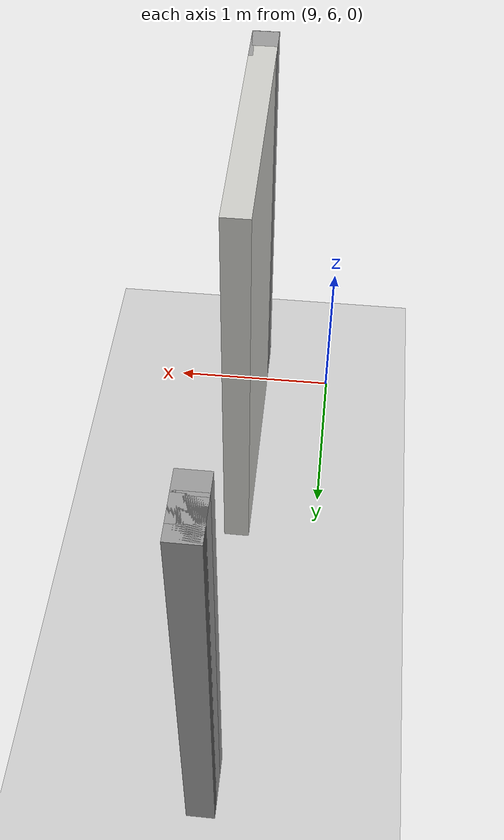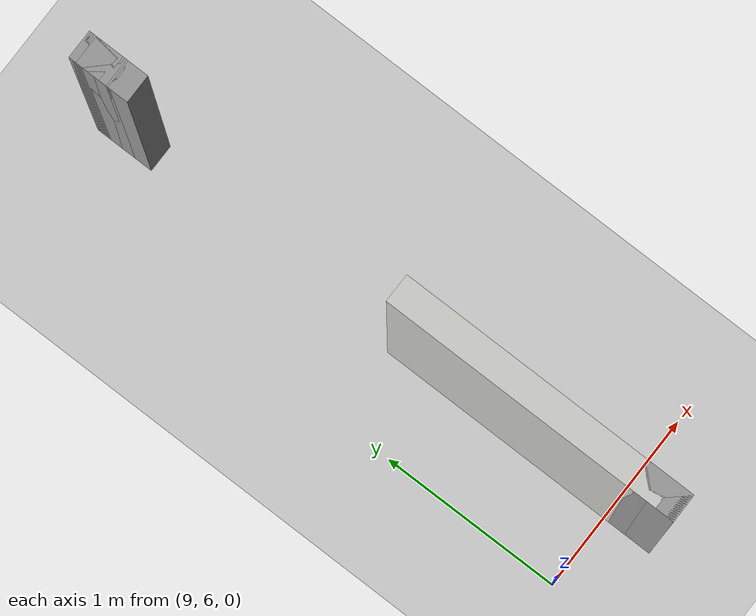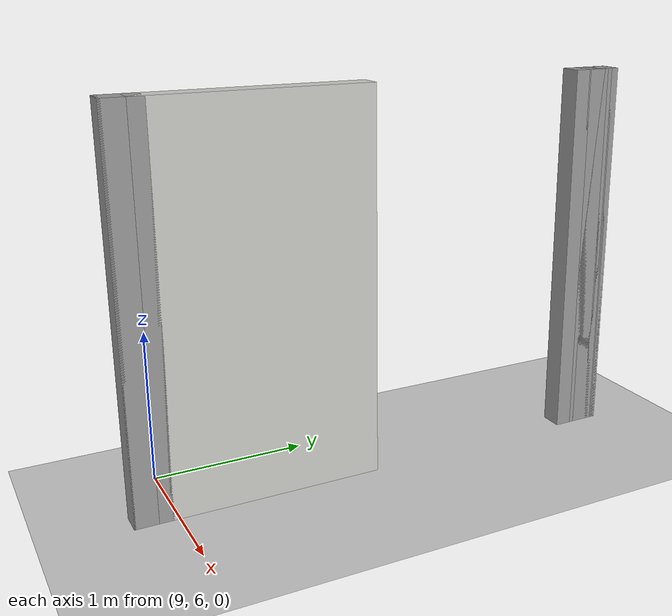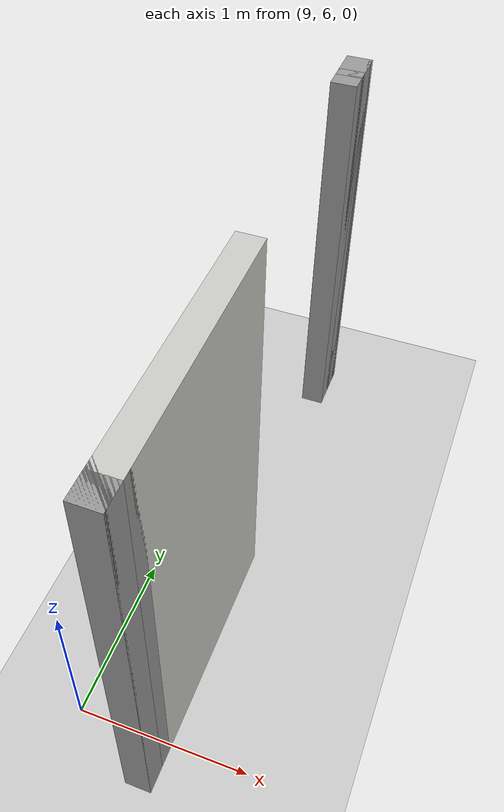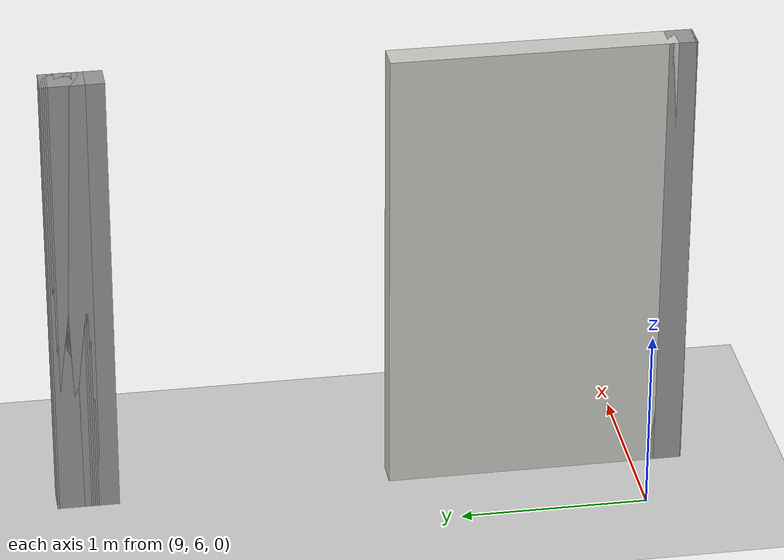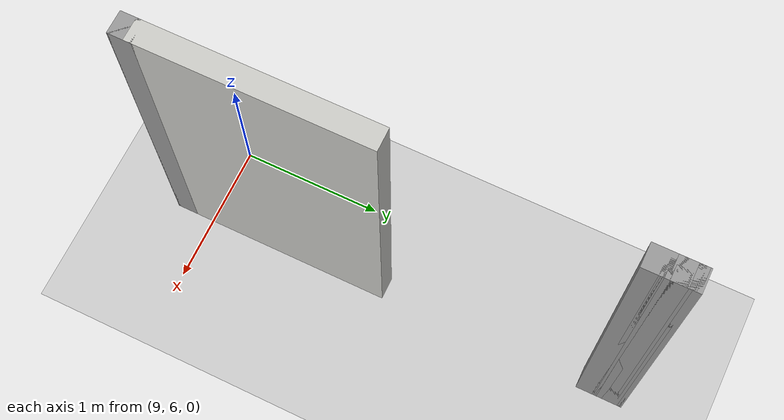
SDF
<sdf version="1.6">
 <world name="default">
  <model name="ground_plane">
   <static>1</static>
   <link name="link">
    <collision name="collision">
     <geometry><plane><normal>0 0 1</normal><size>100 100</size></plane></geometry>
     <surface>
      <contact><collide_bitmask>65535</collide_bitmask></contact>
      <friction><ode><mu>100</mu><mu2>50</mu2></ode></friction>
     </surface>
    </collision>
    <visual name="visual">
     <cast_shadows>0</cast_shadows>
     <geometry><plane><normal>0 0 1</normal><size>100 100</size></plane></geometry>
     <material>
      <script><uri>file://media/materials/scripts/gazebo.material</uri><name>Gazebo/Grey</name></script>
     </material>
    </visual>
   </link>
  </model>
  <model name="ecst_lab_v2">
   <pose>2.38151 7.60499 -4e-06 -3e-06 3e-06 -1.57079</pose>
   <link name="Wall_12">
    <collision name="Wall_12_Collision">
     <geometry><box><size>0.16 0.15 2.5</size></box></geometry>
     <pose>0 0 1.25 0 -0 0</pose>
    </collision>
    <visual name="Wall_12_Visual">
     <pose>0 0 1.25 0 -0 0</pose>
     <geometry><box><size>0.16 0.15 2.5</size></box></geometry>
     <material>
      <script><uri>file://media/materials/scripts/gazebo.material</uri><name>Gazebo/Grey</name></script>
      <ambient>1 1 1 1</ambient>
     </material>
     <meta><layer>0</layer></meta>
    </visual>
    <pose>-1.41801 7.10227 0 0 -0 0</pose>
    <inertial>
     <inertia><ixx>1</ixx><ixy>0</ixy><ixz>0</ixz><iyy>1</iyy><iyz>0</iyz><izz>1</izz></inertia>
     <mass>1</mass>
    </inertial>
   </link>
   <link name="Wall_13">
    <collision name="Wall_13_Collision">
     <geometry><box><size>0.16 0.15 2.5</size></box></geometry>
     <pose>0 0 1.25 0 -0 0</pose>
    </collision>
    <visual name="Wall_13_Visual">
     <pose>0 0 1.25 0 -0 0</pose>
     <geometry><box><size>0.16 0.15 2.5</size></box></geometry>
     <material>
      <script><uri>file://media/materials/scripts/gazebo.material</uri><name>Gazebo/Grey</name></script>
      <ambient>1 1 1 1</ambient>
     </material>
     <meta><layer>0</layer></meta>
    </visual>
    <pose>-1.40801 7.10227 0 0 -0 0</pose>
    <inertial>
     <inertia><ixx>1</ixx><ixy>0</ixy><ixz>0</ixz><iyy>1</iyy><iyz>0</iyz><izz>1</izz></inertia>
     <mass>1</mass>
    </inertial>
   </link>
   <link name="Wall_14">
    <collision name="Wall_14_Collision">
     <geometry><box><size>0.16 0.15 2.5</size></box></geometry>
     <pose>0 0 1.25 0 -0 0</pose>
    </collision>
    <visual name="Wall_14_Visual">
     <pose>0 0 1.25 0 -0 0</pose>
     <geometry><box><size>0.16 0.15 2.5</size></box></geometry>
     <material>
      <script><uri>file://media/materials/scripts/gazebo.material</uri><name>Gazebo/Grey</name></script>
      <ambient>1 1 1 1</ambient>
     </material>
     <meta><layer>0</layer></meta>
    </visual>
    <pose>-1.39801 7.10227 0 0 -0 0</pose>
    <inertial>
     <inertia><ixx>1</ixx><ixy>0</ixy><ixz>0</ixz><iyy>1</iyy><iyz>0</iyz><izz>1</izz></inertia>
     <mass>1</mass>
    </inertial>
   </link>
   <link name="Wall_15">
    <collision name="Wall_15_Collision">
     <geometry><box><size>0.16 0.15 2.5</size></box></geometry>
     <pose>0 0 1.25 0 -0 0</pose>
    </collision>
    <visual name="Wall_15_Visual">
     <pose>0 0 1.25 0 -0 0</pose>
     <geometry><box><size>0.16 0.15 2.5</size></box></geometry>
     <material>
      <script><uri>file://media/materials/scripts/gazebo.material</uri><name>Gazebo/Grey</name></script>
      <ambient>1 1 1 1</ambient>
     </material>
     <meta><layer>0</layer></meta>
    </visual>
    <pose>-1.38801 7.10227 0 0 -0 0</pose>
    <inertial>
     <inertia><ixx>1</ixx><ixy>0</ixy><ixz>0</ixz><iyy>1</iyy><iyz>0</iyz><izz>1</izz></inertia>
     <mass>1</mass>
    </inertial>
   </link>
   <link name="Wall_16">
    <collision name="Wall_16_Collision">
     <geometry><box><size>0.16 0.15 2.5</size></box></geometry>
     <pose>0 0 1.25 0 -0 0</pose>
    </collision>
    <visual name="Wall_16_Visual">
     <pose>0 0 1.25 0 -0 0</pose>
     <geometry><box><size>0.16 0.15 2.5</size></box></geometry>
     <material>
      <script><uri>file://media/materials/scripts/gazebo.material</uri><name>Gazebo/Grey</name></script>
      <ambient>1 1 1 1</ambient>
     </material>
     <meta><layer>0</layer></meta>
    </visual>
    <pose>-1.37801 7.10227 0 0 -0 0</pose>
    <inertial>
     <inertia><ixx>1</ixx><ixy>0</ixy><ixz>0</ixz><iyy>1</iyy><iyz>0</iyz><izz>1</izz></inertia>
     <mass>1</mass>
    </inertial>
   </link>
   <link name="Wall_17">
    <collision name="Wall_17_Collision">
     <geometry><box><size>0.16 0.15 2.5</size></box></geometry>
     <pose>0 0 1.25 0 -0 0</pose>
    </collision>
    <visual name="Wall_17_Visual">
     <pose>0 0 1.25 0 -0 0</pose>
     <geometry><box><size>0.16 0.15 2.5</size></box></geometry>
     <material>
      <script><uri>file://media/materials/scripts/gazebo.material</uri><name>Gazebo/Grey</name></script>
      <ambient>1 1 1 1</ambient>
     </material>
     <meta><layer>0</layer></meta>
    </visual>
    <pose>-1.36801 7.10227 0 0 -0 0</pose>
    <inertial>
     <inertia><ixx>1</ixx><ixy>0</ixy><ixz>0</ixz><iyy>1</iyy><iyz>0</iyz><izz>1</izz></inertia>
     <mass>1</mass>
    </inertial>
   </link>
   <link name="Wall_18">
    <collision name="Wall_18_Collision">
     <geometry><box><size>0.16 0.15 2.5</size></box></geometry>
     <pose>0 0 1.25 0 -0 0</pose>
    </collision>
    <visual name="Wall_18_Visual">
     <pose>0 0 1.25 0 -0 0</pose>
     <geometry><box><size>0.16 0.15 2.5</size></box></geometry>
     <material>
      <script><uri>file://media/materials/scripts/gazebo.material</uri><name>Gazebo/Grey</name></script>
      <ambient>1 1 1 1</ambient>
     </material>
     <meta><layer>0</layer></meta>
    </visual>
    <pose>-1.35801 7.10227 0 0 -0 0</pose>
    <inertial>
     <inertia><ixx>1</ixx><ixy>0</ixy><ixz>0</ixz><iyy>1</iyy><iyz>0</iyz><izz>1</izz></inertia>
     <mass>1</mass>
    </inertial>
   </link>
   <link name="Wall_19">
    <collision name="Wall_19_Collision">
     <geometry><box><size>0.16 0.15 2.5</size></box></geometry>
     <pose>0 0 1.25 0 -0 0</pose>
    </collision>
    <visual name="Wall_19_Visual">
     <pose>0 0 1.25 0 -0 0</pose>
     <geometry><box><size>0.16 0.15 2.5</size></box></geometry>
     <material>
      <script><uri>file://media/materials/scripts/gazebo.material</uri><name>Gazebo/Grey</name></script>
      <ambient>1 1 1 1</ambient>
     </material>
     <meta><layer>0</layer></meta>
    </visual>
    <pose>-1.34801 7.10227 0 0 -0 0</pose>
    <inertial>
     <inertia><ixx>1</ixx><ixy>0</ixy><ixz>0</ixz><iyy>1</iyy><iyz>0</iyz><izz>1</izz></inertia>
     <mass>1</mass>
    </inertial>
   </link>
   <link name="Wall_20">
    <collision name="Wall_20_Collision">
     <geometry><box><size>0.25 0.15 2.5</size></box></geometry>
     <pose>0 0 1.25 0 -0 0</pose>
    </collision>
    <visual name="Wall_20_Visual">
     <pose>0 0 1.25 0 -0 0</pose>
     <geometry><box><size>0.25 0.15 2.5</size></box></geometry>
     <material>
      <script><uri>file://media/materials/scripts/gazebo.material</uri><name>Gazebo/Grey</name></script>
      <ambient>1 1 1 1</ambient>
     </material>
     <meta><layer>0</layer></meta>
    </visual>
    <pose>-1.29301 7.10227 0 0 -0 0</pose>
    <inertial>
     <inertia><ixx>1</ixx><ixy>0</ixy><ixz>0</ixz><iyy>1</iyy><iyz>0</iyz><izz>1</izz></inertia>
     <mass>1</mass>
    </inertial>
   </link>
   <link name="Wall_24">
    <collision name="Wall_24_Collision">
     <geometry><box><size>1.5 0.15 2.5</size></box></geometry>
     <pose>0 0 1.25 0 -0 0</pose>
    </collision>
    <visual name="Wall_24_Visual">
     <pose>0 0 1.25 0 -0 0</pose>
     <geometry><box><size>1.5 0.15 2.5</size></box></geometry>
     <material>
      <script><uri>file://media/materials/scripts/gazebo.material</uri><name>Gazebo/CeilingTiled</name></script>
      <ambient>1 1 1 1</ambient>
     </material>
     <meta><layer>0</layer></meta>
    </visual>
    <pose>1.03199 7.10227 0 0 -0 0</pose>
    <inertial>
     <inertia><ixx>1</ixx><ixy>0</ixy><ixz>0</ixz><iyy>1</iyy><iyz>0</iyz><izz>1</izz></inertia>
     <mass>1</mass>
    </inertial>
   </link>
   <link name="Wall_25">
    <collision name="Wall_25_Collision">
     <geometry><box><size>0.25 0.15 2.5</size></box></geometry>
     <pose>0 0 1.25 0 -0 0</pose>
    </collision>
    <visual name="Wall_25_Visual">
     <pose>0 0 1.25 0 -0 0</pose>
     <geometry><box><size>0.25 0.15 2.5</size></box></geometry>
     <material>
      <script><uri>file://media/materials/scripts/gazebo.material</uri><name>Gazebo/Grey</name></script>
      <ambient>1 1 1 1</ambient>
     </material>
     <meta><layer>0</layer></meta>
    </visual>
    <pose>1.75699 7.10227 0 0 -0 0</pose>
    <inertial>
     <inertia><ixx>1</ixx><ixy>0</ixy><ixz>0</ixz><iyy>1</iyy><iyz>0</iyz><izz>1</izz></inertia>
     <mass>1</mass>
    </inertial>
   </link>
   <link name="Wall_26">
    <collision name="Wall_26_Collision">
     <geometry><box><size>0.15 0.15 2.5</size></box></geometry>
     <pose>0 0 1.25 0 -0 0</pose>
    </collision>
    <visual name="Wall_26_Visual">
     <pose>0 0 1.25 0 -0 0</pose>
     <geometry><box><size>0.15 0.15 2.5</size></box></geometry>
     <material>
      <script><uri>file://media/materials/scripts/gazebo.material</uri><name>Gazebo/Grey</name></script>
      <ambient>1 1 1 1</ambient>
     </material>
     <meta><layer>0</layer></meta>
    </visual>
    <pose>1.80699 7.10227 0 0 -0 0</pose>
    <inertial>
     <inertia><ixx>1</ixx><ixy>0</ixy><ixz>0</ixz><iyy>1</iyy><iyz>0</iyz><izz>1</izz></inertia>
     <mass>1</mass>
    </inertial>
   </link>
  </model>
 </world>
</sdf>
